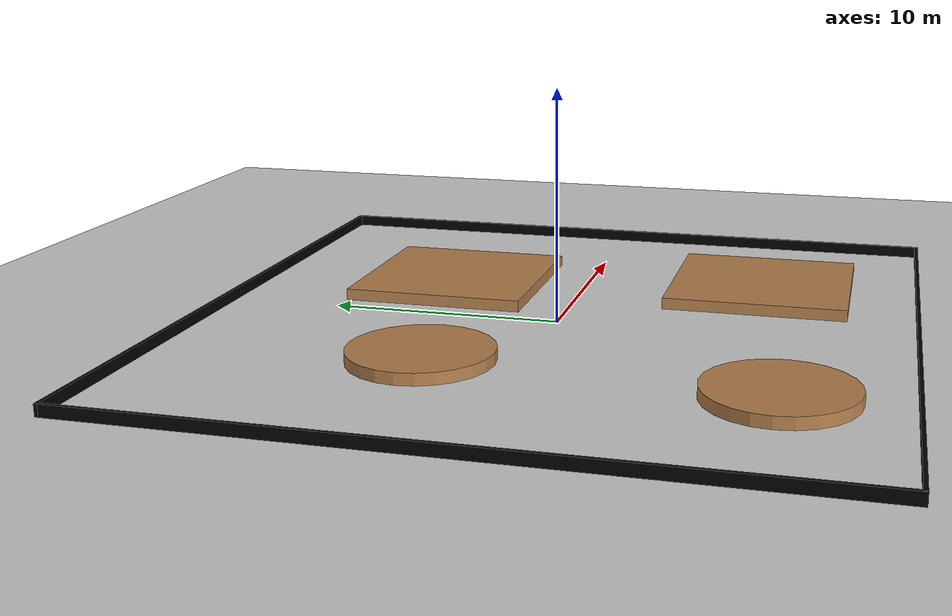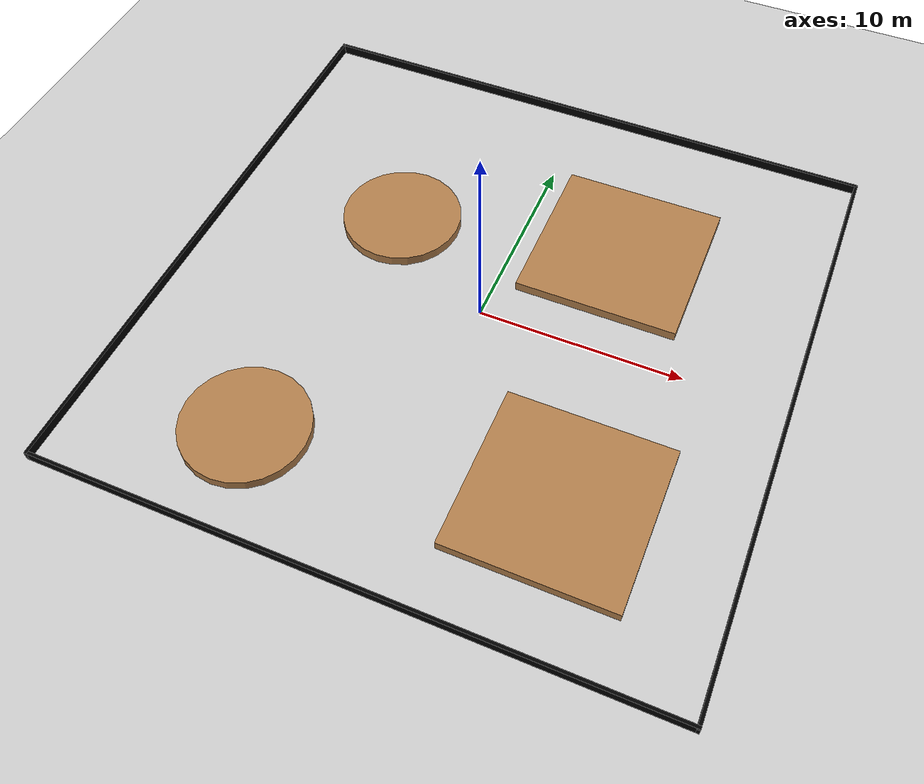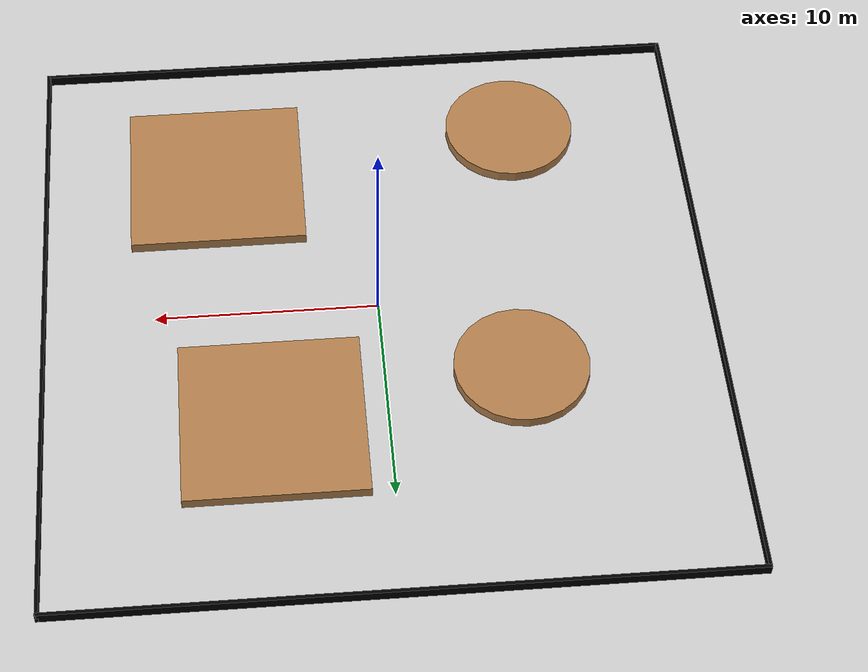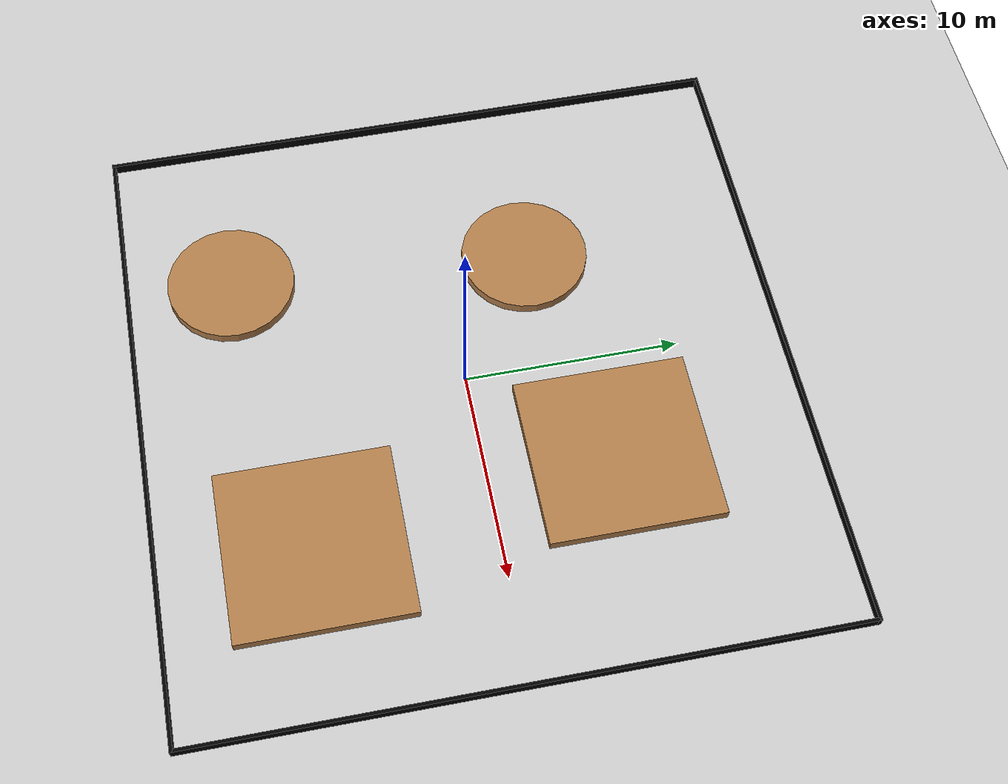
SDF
<sdf version='1.6'>
  <world name='default'>
    <!-- A global light source -->
    <include>
      <uri>model://sun</uri>
    </include>

    <!-- A ground plane -->
    <include>
      <uri>model://ground_plane</uri>
    </include>

    <physics type="ode">
      <real_time_update_rate>1000.0</real_time_update_rate>
      <max_step_size>0.001</max_step_size>
      <real_time_factor>1</real_time_factor>
      <ode>
        <solver>
          <type>quick</type>
          <iters>150</iters>
          <precon_iters>0</precon_iters>
          <sor>1.400000</sor>
          <use_dynamic_moi_rescaling>1</use_dynamic_moi_rescaling>
        </solver>
        <constraints>
          <cfm>0.00001</cfm>
          <erp>0.2</erp>
          <contact_max_correcting_vel>2000.000000</contact_max_correcting_vel>
          <contact_surface_layer>0.01000</contact_surface_layer>
        </constraints>
      </ode>
    </physics>

    <!-- Load world -->
    <include>
      <uri>model://turtlebot3_square_large</uri>
    </include>

    <scene>
      <ambient>0.4 0.4 0.4 1</ambient>
      <background>0.7 0.7 0.7 1</background>
      <shadows>false</shadows>
    </scene>

    <gui fullscreen='0'>
      <camera name='user_camera'>
        <pose>0.0 0.0 35.0 0 1.5708 1.5708</pose>
        <view_controller>orbit</view_controller>
      </camera>
    </gui>
  </world>
</sdf>

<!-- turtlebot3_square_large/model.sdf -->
<sdf version='1.6'>
  <model name='turtlebot3_square_large'>
    <pose frame=''>0 0 0 0 -0 0</pose>
    <link name='Wall_0'>
      <collision name='Wall_0_Collision'>
        <geometry>
          <box>
            <size>30 0.15 0.5</size>
          </box>
        </geometry>
        <pose frame=''>0 0 0.25 0 -0 0</pose>
      </collision>
      <visual name='Wall_0_Visual'>
        <pose frame=''>0 0 0.25 0 -0 0</pose>
        <geometry>
          <box>
            <size>30 0.15 0.5</size>
          </box>
        </geometry>
        <material> <!-- LED material -->
          <ambient>0 0 0 1</ambient>
          <diffuse>0 0 0 1</diffuse>
          <specular>0 0 0 0</specular>
          <emissive>1 0 0 1</emissive>
        </material> <!-- End LED material -->

      </visual>
      <pose frame=''>0 14.925 0 0 -0 0</pose>
    </link>
    <link name='Wall_2'>
      <collision name='Wall_2_Collision'>
        <geometry>
          <box>
            <size>30 0.15 0.5</size>
          </box>
        </geometry>
        <pose frame=''>0 0 0.25 0 -0 0</pose>
      </collision>
      <visual name='Wall_2_Visual'>
        <pose frame=''>0 0 0.25 0 -0 0</pose>
        <geometry>
          <box>
            <size>30 0.15 0.5</size>
          </box>
        </geometry>
        <material> <!-- LED material -->
          <ambient>0 0 0 1</ambient>
          <diffuse>0 0 0 1</diffuse>
          <specular>0 0 0 0</specular>
          <emissive>1 1 0 1</emissive>
        </material> <!-- End LED material -->
      </visual>
      <pose frame=''>-14.925 0 0 0 0 -1.5708</pose>
    </link>
    <link name='Wall_3'>
      <collision name='Wall_3_Collision'>
        <geometry>
          <box>
            <size>30 0.15 0.5</size>
          </box>
        </geometry>
        <pose frame=''>0 0 0.25 0 -0 0</pose>
      </collision>
      <visual name='Wall_3_Visual'>
        <pose frame=''>0 0 0.25 0 -0 0</pose>
        <geometry>
          <box>
            <size>30 0.15 0.5</size>
          </box>
        </geometry>
        <material> <!-- LED material -->
          <ambient>0 0 0 1</ambient>
          <diffuse>0 0 0 1</diffuse>
          <specular>0 0 0 0</specular>
          <emissive>0 1 0 1</emissive>
        </material> <!-- End LED material -->

      </visual>
      <pose frame=''>0 -14.925 0 0 -0 0</pose>
    </link>
    <link name='Wall_4'>
      <collision name='Wall_4_Collision'>
        <geometry>
          <box>
            <size>30 0.15 0.5</size>
          </box>
        </geometry>
        <pose frame=''>0 0 0.25 0 -0 0</pose>
      </collision>
      <visual name='Wall_4_Visual'>
        <pose frame=''>0 0 0.25 0 -0 0</pose>
        <geometry>
          <box>
            <size>30 0.15 0.5</size>
          </box>
        </geometry>
        <material> <!-- LED material -->
          <ambient>0 0 0 1</ambient>
          <diffuse>0 0 0 1</diffuse>
          <specular>0 0 0 0</specular>
          <emissive>0 0 1 1</emissive>
        </material> <!-- End LED material -->
      </visual>
      <pose frame=''>14.925 0 0 0 -0 1.5708</pose>
    </link>

    <link name='box_0'>
      <collision name='Wall_0_Collision'>
        <geometry>
            <cylinder>
              <radius>3</radius>
              <length>.5</length>
            </cylinder>
        </geometry>
        <pose frame=''>0 0 0.25 0 -0 0</pose>
      </collision>
      <visual name='Wall_0_Visual'>
        <pose frame=''>0 0 0.25 0 -0 0</pose>
        <geometry>
            <cylinder>
              <radius>3</radius>
              <length>.5</length>
            </cylinder>
        </geometry>
        <material>
          <script>
            <uri>file://media/materials/scripts/gazebo.material</uri>
            <name>Gazebo/Wood</name>
          </script>
          <ambient>1 1 1 1</ambient>
        </material>
      </visual>
      <pose frame=''>-6 4 0 0 -0 0</pose>
    </link>

    <link name='box_1'>
      <collision name='Wall_0_Collision'>
        <geometry>
          <box>
            <size>8 8 0.5</size>
          </box>
        </geometry>
        <pose frame=''>0 0 0.25 0 -0 0</pose>
      </collision>
      <visual name='Wall_0_Visual'>
        <pose frame=''>0 0 0.25 0 -0 0</pose>
        <geometry>
          <box>
            <size>8 8 0.5</size>
          </box>
        </geometry>
        <material>
          <script>
            <uri>file://media/materials/scripts/gazebo.material</uri>
            <name>Gazebo/Wood</name>
          </script>
          <ambient>1 1 1 1</ambient>
        </material>
      </visual>
      <pose frame=''>5 6 0 0 -0 0</pose>
    </link>

    <link name='box_2'>
      <collision name='Wall_0_Collision'>
        <geometry>
            <cylinder>
              <radius>3</radius>
              <length>.5</length>
            </cylinder>
        </geometry>
        <pose frame=''>0 0 0.25 0 -0 0</pose>
      </collision>
      <visual name='Wall_0_Visual'>
        <pose frame=''>0 0 0.25 0 -0 0</pose>
        <geometry>
            <cylinder>
              <radius>3</radius>
              <length>.5</length>
            </cylinder>
        </geometry>
        <material>
          <script>
            <uri>file://media/materials/scripts/gazebo.material</uri>
            <name>Gazebo/Wood</name>
          </script>
          <ambient>1 1 1 1</ambient>
        </material>
      </visual>
      <pose frame=''>-7 -10 0 0 -0 0</pose>
    </link>

    <link name='box_3'>
      <collision name='Wall_0_Collision'>
        <geometry>
          <box>
            <size>8 8 0.5</size>
          </box>
        </geometry>
        <pose frame=''>0 0 0.25 0 -0 0</pose>
      </collision>
      <visual name='Wall_0_Visual'>
        <pose frame=''>0 0 0.25 0 -0 0</pose>
        <geometry>
          <box>
            <size>8 8 0.5</size>
          </box>
        </geometry>
        <material>
          <script>
            <uri>file://media/materials/scripts/gazebo.material</uri>
            <name>Gazebo/Wood</name>
          </script>
          <ambient>1 1 1 1</ambient>
        </material>
      </visual>
      <pose frame=''>7 -8 0 0 -0 0</pose>
    </link>

    <static>1</static>
  </model>
</sdf>
